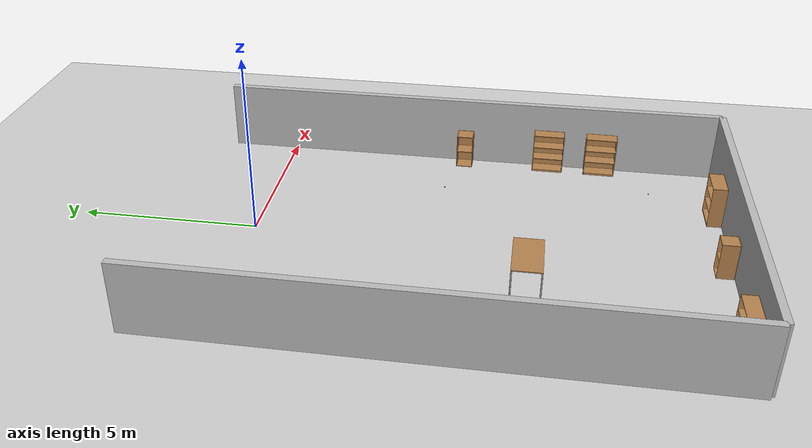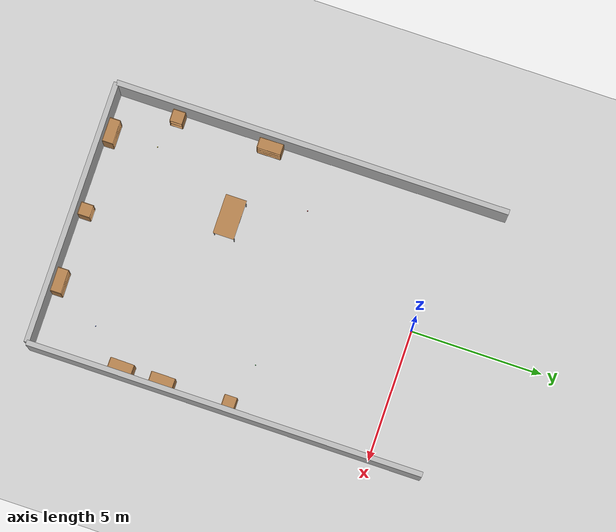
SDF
<sdf version="1.7">
 <world name="default">
  <model name="ground_plane">
   <static>1</static>
   <link name="link">
    <collision name="collision">
     <geometry><plane><normal>0 0 1</normal><size>100 100</size></plane></geometry>
     <surface><friction><ode><mu>100</mu><mu2>50</mu2></ode></friction></surface>
    </collision>
    <visual name="visual">
     <cast_shadows>0</cast_shadows>
     <geometry><plane><normal>0 0 1</normal><size>100 100</size></plane></geometry>
     <material>
      <script><uri>file://media/materials/scripts/gazebo.material</uri><name>Gazebo/Grey</name></script>
     </material>
    </visual>
    <velocity_decay><linear>0</linear><angular>0</angular></velocity_decay>
   </link>
  </model>
  <model name="wall_1_model">
   <pose>0 -13 1 0 -0 0</pose>
   <static>1</static>
   <link name="wall_1_body">
    <inertial>
     <mass>1</mass>
     <inertia><ixx>1</ixx><ixy>0</ixy><ixz>0</ixz><iyy>1</iyy><iyz>0</iyz><izz>1</izz></inertia>
    </inertial>
    <collision name="collision"><geometry><box><size>10 0.2 2</size></box></geometry></collision>
    <visual name="visual"><geometry><box><size>10 0.2 2</size></box></geometry></visual>
    <velocity_decay><linear>0</linear><angular>0</angular></velocity_decay>
   </link>
  </model>
  <model name="wall_3_model">
   <pose>-5 -5.5 1 0 -0 0</pose>
   <static>1</static>
   <link name="wall_3_body">
    <inertial>
     <mass>1</mass>
     <inertia><ixx>1</ixx><ixy>0</ixy><ixz>0</ixz><iyy>1</iyy><iyz>0</iyz><izz>1</izz></inertia>
    </inertial>
    <collision name="collision"><geometry><box><size>0.2 15 2</size></box></geometry></collision>
    <visual name="visual"><geometry><box><size>0.2 15 2</size></box></geometry></visual>
    <velocity_decay><linear>0</linear><angular>0</angular></velocity_decay>
   </link>
  </model>
  <model name="wall_4_model">
   <pose>5 -5.5 1 0 -0 0</pose>
   <static>1</static>
   <link name="wall_4_body">
    <inertial>
     <mass>1</mass>
     <inertia><ixx>1</ixx><ixy>0</ixy><ixz>0</ixz><iyy>1</iyy><iyz>0</iyz><izz>1</izz></inertia>
    </inertial>
    <collision name="collision"><geometry><box><size>0.2 15 2</size></box></geometry></collision>
    <visual name="visual"><geometry><box><size>0.2 15 2</size></box></geometry></visual>
    <velocity_decay><linear>0</linear><angular>0</angular></velocity_decay>
   </link>
  </model>
  <model name="cabinet_0">
   <static>0</static>
   <link name="cabinet_bottom_plate">
    <inertial>
     <pose>0 0 -1 0 -0 0</pose>
     <inertia><ixx>2.05</ixx><ixy>0</ixy><ixz>0</ixz><iyy>2.05</iyy><iyz>0</iyz><izz>2.05</izz></inertia>
     <mass>25</mass>
    </inertial>
    <collision name="cabinet_bottom_plate_geom">
     <pose>0 0 0.01 0 -0 0</pose>
     <geometry><box><size>0.45 0.45 0.02</size></box></geometry>
    </collision>
    <visual name="cabinet_bottom_plate_geom_visual">
     <pose>0 0 0.01 0 -0 0</pose>
     <geometry><box><size>0.45 0.45 0.02</size></box></geometry>
     <material>
      <script><uri>file://media/materials/scripts/gazebo.material</uri><name>Gazebo/Wood</name></script>
     </material>
    </visual>
    <collision name="cabinet_bottom_plate_geom_cabinet_back_plate">
     <pose>0.235 0 0.51 0 -0 0</pose>
     <geometry><box><size>0.02 0.45 1.02</size></box></geometry>
    </collision>
    <visual name="cabinet_bottom_plate_geom_cabinet_back_plate_visual">
     <pose>0.235 0 0.51 0 -0 0</pose>
     <geometry><box><size>0.02 0.45 1.02</size></box></geometry>
     <material>
      <script><uri>file://media/materials/scripts/gazebo.material</uri><name>Gazebo/Wood</name></script>
     </material>
    </visual>
    <collision name="cabinet_bottom_plate_geom_cabinet_left_plate">
     <pose>0 0.235 0.51 0 -0 0</pose>
     <geometry><box><size>0.45 0.02 1.02</size></box></geometry>
    </collision>
    <visual name="cabinet_bottom_plate_geom_cabinet_left_plate_visual">
     <pose>0 0.235 0.51 0 -0 0</pose>
     <geometry><box><size>0.45 0.02 1.02</size></box></geometry>
     <material>
      <script><uri>file://media/materials/scripts/gazebo.material</uri><name>Gazebo/Wood</name></script>
     </material>
    </visual>
    <collision name="cabinet_bottom_plate_geom_cabinet_middle_plate">
     <pose>0 0 0.51 0 -0 0</pose>
     <geometry><box><size>0.45 0.45 0.02</size></box></geometry>
    </collision>
    <visual name="cabinet_bottom_plate_geom_cabinet_middle_plate_visual">
     <pose>0 0 0.51 0 -0 0</pose>
     <geometry><box><size>0.45 0.45 0.02</size></box></geometry>
     <material>
      <script><uri>file://media/materials/scripts/gazebo.material</uri><name>Gazebo/Wood</name></script>
     </material>
    </visual>
    <collision name="cabinet_bottom_plate_geom_cabinet_right_plate">
     <pose>0 -0.235 0.51 0 -0 0</pose>
     <geometry><box><size>0.45 0.02 1.02</size></box></geometry>
    </collision>
    <visual name="cabinet_bottom_plate_geom_cabinet_right_plate_visual">
     <pose>0 -0.235 0.51 0 -0 0</pose>
     <geometry><box><size>0.45 0.02 1.02</size></box></geometry>
     <material>
      <script><uri>file://media/materials/scripts/gazebo.material</uri><name>Gazebo/Wood</name></script>
     </material>
    </visual>
    <collision name="cabinet_bottom_plate_geom_cabinet_top_plate">
     <pose>0 0 1.01 0 -0 0</pose>
     <geometry><box><size>0.45 0.45 0.02</size></box></geometry>
    </collision>
    <visual name="cabinet_bottom_plate_geom_cabinet_top_plate_visual">
     <pose>0 0 1.01 0 -0 0</pose>
     <geometry><box><size>0.45 0.45 0.02</size></box></geometry>
     <material>
      <script><uri>file://media/materials/scripts/gazebo.material</uri><name>Gazebo/Wood</name></script>
     </material>
    </visual>
    <velocity_decay><linear>0</linear><angular>0</angular></velocity_decay>
   </link>
   <pose>4.65193 -5.43983 -1e-06 -1e-06 1e-06 0.000854</pose>
  </model>
  <model name="bookshelf">
   <static>0</static>
   <link name="link">
    <inertial>
     <mass>1</mass>
     <inertia><ixx>1</ixx><ixy>0</ixy><ixz>0</ixz><iyy>1</iyy><iyz>0</iyz><izz>1</izz></inertia>
    </inertial>
    <collision name="back">
     <pose>0 0.005 0.6 0 -0 0</pose>
     <geometry><box><size>0.9 0.01 1.2</size></box></geometry>
    </collision>
    <visual name="visual1">
     <pose>0 0.005 0.6 0 -0 0</pose>
     <geometry><box><size>0.9 0.01 1.2</size></box></geometry>
     <material>
      <script><uri>file://media/materials/scripts/gazebo.material</uri><name>Gazebo/Wood</name></script>
     </material>
    </visual>
    <collision name="left_side">
     <pose>0.45 -0.195 0.6 0 -0 0</pose>
     <geometry><box><size>0.02 0.4 1.2</size></box></geometry>
    </collision>
    <visual name="visual2">
     <pose>0.45 -0.195 0.6 0 -0 0</pose>
     <geometry><box><size>0.02 0.4 1.2</size></box></geometry>
     <material>
      <script><uri>file://media/materials/scripts/gazebo.material</uri><name>Gazebo/Wood</name></script>
     </material>
    </visual>
    <collision name="right_side">
     <pose>-0.45 -0.195 0.6 0 -0 0</pose>
     <geometry><box><size>0.02 0.4 1.2</size></box></geometry>
    </collision>
    <visual name="visual3">
     <pose>-0.45 -0.195 0.6 0 -0 0</pose>
     <geometry><box><size>0.02 0.4 1.2</size></box></geometry>
     <material>
      <script><uri>file://media/materials/scripts/gazebo.material</uri><name>Gazebo/Wood</name></script>
     </material>
    </visual>
    <collision name="bottom">
     <pose>0 -0.195 0.03 0 -0 0</pose>
     <geometry><box><size>0.88 0.4 0.06</size></box></geometry>
    </collision>
    <visual name="visual4">
     <pose>0 -0.195 0.03 0 -0 0</pose>
     <geometry><box><size>0.88 0.4 0.06</size></box></geometry>
     <material>
      <script><uri>file://media/materials/scripts/gazebo.material</uri><name>Gazebo/Wood</name></script>
     </material>
    </visual>
    <collision name="top">
     <pose>0 -0.195 1.19 0 -0 0</pose>
     <geometry><box><size>0.88 0.4 0.02</size></box></geometry>
    </collision>
    <visual name="visual5">
     <pose>0 -0.195 1.19 0 -0 0</pose>
     <geometry><box><size>0.88 0.4 0.02</size></box></geometry>
     <material>
      <script><uri>file://media/materials/scripts/gazebo.material</uri><name>Gazebo/Wood</name></script>
     </material>
    </visual>
    <collision name="low_shelf">
     <pose>0 -0.195 0.43 0 -0 0</pose>
     <geometry><box><size>0.88 0.4 0.02</size></box></geometry>
    </collision>
    <visual name="visual6">
     <pose>0 -0.195 0.43 0 -0 0</pose>
     <geometry><box><size>0.88 0.4 0.02</size></box></geometry>
     <material>
      <script><uri>file://media/materials/scripts/gazebo.material</uri><name>Gazebo/Wood</name></script>
     </material>
    </visual>
    <collision name="high_shelf">
     <pose>0 -0.195 0.8 0 -0 0</pose>
     <geometry><box><size>0.88 0.4 0.02</size></box></geometry>
    </collision>
    <visual name="visual7">
     <pose>0 -0.195 0.8 0 -0 0</pose>
     <geometry><box><size>0.88 0.4 0.02</size></box></geometry>
     <material>
      <script><uri>file://media/materials/scripts/gazebo.material</uri><name>Gazebo/Wood</name></script>
     </material>
    </visual>
    <velocity_decay><linear>0</linear><angular>0</angular></velocity_decay>
   </link>
   <pose>4.88139 -9.56645 1e-06 -0 1e-06 -1.5884</pose>
  </model>
  <model name="bookshelf_2">
   <static>0</static>
   <link name="link">
    <inertial>
     <mass>1</mass>
     <inertia><ixx>1</ixx><ixy>0</ixy><ixz>0</ixz><iyy>1</iyy><iyz>0</iyz><izz>1</izz></inertia>
    </inertial>
    <collision name="back">
     <pose>0 0.005 0.6 0 -0 0</pose>
     <geometry><box><size>0.9 0.01 1.2</size></box></geometry>
    </collision>
    <visual name="visual1">
     <pose>0 0.005 0.6 0 -0 0</pose>
     <geometry><box><size>0.9 0.01 1.2</size></box></geometry>
     <material>
      <script><uri>file://media/materials/scripts/gazebo.material</uri><name>Gazebo/Wood</name></script>
     </material>
    </visual>
    <collision name="left_side">
     <pose>0.45 -0.195 0.6 0 -0 0</pose>
     <geometry><box><size>0.02 0.4 1.2</size></box></geometry>
    </collision>
    <visual name="visual2">
     <pose>0.45 -0.195 0.6 0 -0 0</pose>
     <geometry><box><size>0.02 0.4 1.2</size></box></geometry>
     <material>
      <script><uri>file://media/materials/scripts/gazebo.material</uri><name>Gazebo/Wood</name></script>
     </material>
    </visual>
    <collision name="right_side">
     <pose>-0.45 -0.195 0.6 0 -0 0</pose>
     <geometry><box><size>0.02 0.4 1.2</size></box></geometry>
    </collision>
    <visual name="visual3">
     <pose>-0.45 -0.195 0.6 0 -0 0</pose>
     <geometry><box><size>0.02 0.4 1.2</size></box></geometry>
     <material>
      <script><uri>file://media/materials/scripts/gazebo.material</uri><name>Gazebo/Wood</name></script>
     </material>
    </visual>
    <collision name="bottom">
     <pose>0 -0.195 0.03 0 -0 0</pose>
     <geometry><box><size>0.88 0.4 0.06</size></box></geometry>
    </collision>
    <visual name="visual4">
     <pose>0 -0.195 0.03 0 -0 0</pose>
     <geometry><box><size>0.88 0.4 0.06</size></box></geometry>
     <material>
      <script><uri>file://media/materials/scripts/gazebo.material</uri><name>Gazebo/Wood</name></script>
     </material>
    </visual>
    <collision name="top">
     <pose>0 -0.195 1.19 0 -0 0</pose>
     <geometry><box><size>0.88 0.4 0.02</size></box></geometry>
    </collision>
    <visual name="visual5">
     <pose>0 -0.195 1.19 0 -0 0</pose>
     <geometry><box><size>0.88 0.4 0.02</size></box></geometry>
     <material>
      <script><uri>file://media/materials/scripts/gazebo.material</uri><name>Gazebo/Wood</name></script>
     </material>
    </visual>
    <collision name="low_shelf">
     <pose>0 -0.195 0.43 0 -0 0</pose>
     <geometry><box><size>0.88 0.4 0.02</size></box></geometry>
    </collision>
    <visual name="visual6">
     <pose>0 -0.195 0.43 0 -0 0</pose>
     <geometry><box><size>0.88 0.4 0.02</size></box></geometry>
     <material>
      <script><uri>file://media/materials/scripts/gazebo.material</uri><name>Gazebo/Wood</name></script>
     </material>
    </visual>
    <collision name="high_shelf">
     <pose>0 -0.195 0.8 0 -0 0</pose>
     <geometry><box><size>0.88 0.4 0.02</size></box></geometry>
    </collision>
    <visual name="visual7">
     <pose>0 -0.195 0.8 0 -0 0</pose>
     <geometry><box><size>0.88 0.4 0.02</size></box></geometry>
     <material>
      <script><uri>file://media/materials/scripts/gazebo.material</uri><name>Gazebo/Wood</name></script>
     </material>
    </visual>
    <velocity_decay><linear>0</linear><angular>0</angular></velocity_decay>
   </link>
   <pose>-4.86972 -7.01077 1e-06 0 1e-06 1.57822</pose>
  </model>
  <model name="table_1">
   <static>0</static>
   <link name="link">
    <collision name="surface">
     <pose>0 0 1 0 -0 0</pose>
     <geometry><box><size>1.5 0.8 0.03</size></box></geometry>
    </collision>
    <visual name="visual1">
     <pose>0 0 1 0 -0 0</pose>
     <geometry><box><size>1.5 0.8 0.03</size></box></geometry>
     <material>
      <script><uri>file://media/materials/scripts/gazebo.material</uri><name>Gazebo/Wood</name></script>
     </material>
    </visual>
    <collision name="front_left_leg_collision">
     <pose>0.68 0.38 0.5 0 -0 0</pose>
     <geometry><cylinder><radius>0.02</radius><length>1</length></cylinder></geometry>
    </collision>
    <visual name="front_left_leg">
     <pose>0.68 0.38 0.5 0 -0 0</pose>
     <geometry><cylinder><radius>0.02</radius><length>1</length></cylinder></geometry>
     <material>
      <script><uri>file://media/materials/scripts/gazebo.material</uri><name>Gazebo/Grey</name></script>
     </material>
    </visual>
    <collision name="front_right_leg_collision">
     <pose>0.68 -0.38 0.5 0 -0 0</pose>
     <geometry><cylinder><radius>0.02</radius><length>1</length></cylinder></geometry>
    </collision>
    <visual name="front_right_leg">
     <pose>0.68 -0.38 0.5 0 -0 0</pose>
     <geometry><cylinder><radius>0.02</radius><length>1</length></cylinder></geometry>
     <material>
      <script><uri>file://media/materials/scripts/gazebo.material</uri><name>Gazebo/Grey</name></script>
     </material>
    </visual>
    <collision name="back_right_leg_collision">
     <pose>-0.68 -0.38 0.5 0 -0 0</pose>
     <geometry><cylinder><radius>0.02</radius><length>1</length></cylinder></geometry>
    </collision>
    <visual name="back_right_leg">
     <pose>-0.68 -0.38 0.5 0 -0 0</pose>
     <geometry><cylinder><radius>0.02</radius><length>1</length></cylinder></geometry>
     <material>
      <script><uri>file://media/materials/scripts/gazebo.material</uri><name>Gazebo/Grey</name></script>
     </material>
    </visual>
    <collision name="back_left_leg_collision">
     <pose>-0.68 0.38 0.5 0 -0 0</pose>
     <geometry><cylinder><radius>0.02</radius><length>1</length></cylinder></geometry>
    </collision>
    <visual name="back_left_leg">
     <pose>-0.68 0.38 0.5 0 -0 0</pose>
     <geometry><cylinder><radius>0.02</radius><length>1</length></cylinder></geometry>
     <material>
      <script><uri>file://media/materials/scripts/gazebo.material</uri><name>Gazebo/Grey</name></script>
     </material>
    </visual>
    <velocity_decay><linear>0</linear><angular>0</angular></velocity_decay>
    <inertial>
     <inertia><ixx>1</ixx><ixy>0</ixy><ixz>0</ixz><iyy>1</iyy><iyz>0</iyz><izz>1</izz></inertia>
     <mass>1</mass>
    </inertial>
   </link>
   <pose>-1.76173 -7.584 -1e-06 0 2e-06 0</pose>
  </model>
  <model name="bookshelf_3">
   <static>0</static>
   <link name="link">
    <inertial>
     <mass>1</mass>
     <inertia><ixx>1</ixx><ixy>0</ixy><ixz>0</ixz><iyy>1</iyy><iyz>0</iyz><izz>1</izz></inertia>
    </inertial>
    <collision name="back">
     <pose>0 0.005 0.6 0 -0 0</pose>
     <geometry><box><size>0.9 0.01 1.2</size></box></geometry>
    </collision>
    <visual name="visual1">
     <pose>0 0.005 0.6 0 -0 0</pose>
     <geometry><box><size>0.9 0.01 1.2</size></box></geometry>
     <material>
      <script><uri>file://media/materials/scripts/gazebo.material</uri><name>Gazebo/Wood</name></script>
     </material>
    </visual>
    <collision name="left_side">
     <pose>0.45 -0.195 0.6 0 -0 0</pose>
     <geometry><box><size>0.02 0.4 1.2</size></box></geometry>
    </collision>
    <visual name="visual2">
     <pose>0.45 -0.195 0.6 0 -0 0</pose>
     <geometry><box><size>0.02 0.4 1.2</size></box></geometry>
     <material>
      <script><uri>file://media/materials/scripts/gazebo.material</uri><name>Gazebo/Wood</name></script>
     </material>
    </visual>
    <collision name="right_side">
     <pose>-0.45 -0.195 0.6 0 -0 0</pose>
     <geometry><box><size>0.02 0.4 1.2</size></box></geometry>
    </collision>
    <visual name="visual3">
     <pose>-0.45 -0.195 0.6 0 -0 0</pose>
     <geometry><box><size>0.02 0.4 1.2</size></box></geometry>
     <material>
      <script><uri>file://media/materials/scripts/gazebo.material</uri><name>Gazebo/Wood</name></script>
     </material>
    </visual>
    <collision name="bottom">
     <pose>0 -0.195 0.03 0 -0 0</pose>
     <geometry><box><size>0.88 0.4 0.06</size></box></geometry>
    </collision>
    <visual name="visual4">
     <pose>0 -0.195 0.03 0 -0 0</pose>
     <geometry><box><size>0.88 0.4 0.06</size></box></geometry>
     <material>
      <script><uri>file://media/materials/scripts/gazebo.material</uri><name>Gazebo/Wood</name></script>
     </material>
    </visual>
    <collision name="top">
     <pose>0 -0.195 1.19 0 -0 0</pose>
     <geometry><box><size>0.88 0.4 0.02</size></box></geometry>
    </collision>
    <visual name="visual5">
     <pose>0 -0.195 1.19 0 -0 0</pose>
     <geometry><box><size>0.88 0.4 0.02</size></box></geometry>
     <material>
      <script><uri>file://media/materials/scripts/gazebo.material</uri><name>Gazebo/Wood</name></script>
     </material>
    </visual>
    <collision name="low_shelf">
     <pose>0 -0.195 0.43 0 -0 0</pose>
     <geometry><box><size>0.88 0.4 0.02</size></box></geometry>
    </collision>
    <visual name="visual6">
     <pose>0 -0.195 0.43 0 -0 0</pose>
     <geometry><box><size>0.88 0.4 0.02</size></box></geometry>
     <material>
      <script><uri>file://media/materials/scripts/gazebo.material</uri><name>Gazebo/Wood</name></script>
     </material>
    </visual>
    <collision name="high_shelf">
     <pose>0 -0.195 0.8 0 -0 0</pose>
     <geometry><box><size>0.88 0.4 0.02</size></box></geometry>
    </collision>
    <visual name="visual7">
     <pose>0 -0.195 0.8 0 -0 0</pose>
     <geometry><box><size>0.88 0.4 0.02</size></box></geometry>
     <material>
      <script><uri>file://media/materials/scripts/gazebo.material</uri><name>Gazebo/Wood</name></script>
     </material>
    </visual>
    <velocity_decay><linear>0</linear><angular>0</angular></velocity_decay>
   </link>
   <pose>2.43147 -12.8834 -1e-06 -0 -3e-06 -3.13362</pose>
  </model>
  <model name="bookshelf_4">
   <static>0</static>
   <link name="link">
    <inertial>
     <mass>1</mass>
     <inertia><ixx>1</ixx><ixy>0</ixy><ixz>0</ixz><iyy>1</iyy><iyz>0</iyz><izz>1</izz></inertia>
    </inertial>
    <collision name="back">
     <pose>0 0.005 0.6 0 -0 0</pose>
     <geometry><box><size>0.9 0.01 1.2</size></box></geometry>
    </collision>
    <visual name="visual1">
     <pose>0 0.005 0.6 0 -0 0</pose>
     <geometry><box><size>0.9 0.01 1.2</size></box></geometry>
     <material>
      <script><uri>file://media/materials/scripts/gazebo.material</uri><name>Gazebo/Wood</name></script>
     </material>
    </visual>
    <collision name="left_side">
     <pose>0.45 -0.195 0.6 0 -0 0</pose>
     <geometry><box><size>0.02 0.4 1.2</size></box></geometry>
    </collision>
    <visual name="visual2">
     <pose>0.45 -0.195 0.6 0 -0 0</pose>
     <geometry><box><size>0.02 0.4 1.2</size></box></geometry>
     <material>
      <script><uri>file://media/materials/scripts/gazebo.material</uri><name>Gazebo/Wood</name></script>
     </material>
    </visual>
    <collision name="right_side">
     <pose>-0.45 -0.195 0.6 0 -0 0</pose>
     <geometry><box><size>0.02 0.4 1.2</size></box></geometry>
    </collision>
    <visual name="visual3">
     <pose>-0.45 -0.195 0.6 0 -0 0</pose>
     <geometry><box><size>0.02 0.4 1.2</size></box></geometry>
     <material>
      <script><uri>file://media/materials/scripts/gazebo.material</uri><name>Gazebo/Wood</name></script>
     </material>
    </visual>
    <collision name="bottom">
     <pose>0 -0.195 0.03 0 -0 0</pose>
     <geometry><box><size>0.88 0.4 0.06</size></box></geometry>
    </collision>
    <visual name="visual4">
     <pose>0 -0.195 0.03 0 -0 0</pose>
     <geometry><box><size>0.88 0.4 0.06</size></box></geometry>
     <material>
      <script><uri>file://media/materials/scripts/gazebo.material</uri><name>Gazebo/Wood</name></script>
     </material>
    </visual>
    <collision name="top">
     <pose>0 -0.195 1.19 0 -0 0</pose>
     <geometry><box><size>0.88 0.4 0.02</size></box></geometry>
    </collision>
    <visual name="visual5">
     <pose>0 -0.195 1.19 0 -0 0</pose>
     <geometry><box><size>0.88 0.4 0.02</size></box></geometry>
     <material>
      <script><uri>file://media/materials/scripts/gazebo.material</uri><name>Gazebo/Wood</name></script>
     </material>
    </visual>
    <collision name="low_shelf">
     <pose>0 -0.195 0.43 0 -0 0</pose>
     <geometry><box><size>0.88 0.4 0.02</size></box></geometry>
    </collision>
    <visual name="visual6">
     <pose>0 -0.195 0.43 0 -0 0</pose>
     <geometry><box><size>0.88 0.4 0.02</size></box></geometry>
     <material>
      <script><uri>file://media/materials/scripts/gazebo.material</uri><name>Gazebo/Wood</name></script>
     </material>
    </visual>
    <collision name="high_shelf">
     <pose>0 -0.195 0.8 0 -0 0</pose>
     <geometry><box><size>0.88 0.4 0.02</size></box></geometry>
    </collision>
    <visual name="visual7">
     <pose>0 -0.195 0.8 0 -0 0</pose>
     <geometry><box><size>0.88 0.4 0.02</size></box></geometry>
     <material>
      <script><uri>file://media/materials/scripts/gazebo.material</uri><name>Gazebo/Wood</name></script>
     </material>
    </visual>
    <velocity_decay><linear>0</linear><angular>0</angular></velocity_decay>
   </link>
   <pose>4.88559 -7.99576 -1e-06 0 3e-06 -1.57572</pose>
  </model>
  <model name="bookshelf_5">
   <static>0</static>
   <link name="link">
    <inertial>
     <mass>1</mass>
     <inertia><ixx>1</ixx><ixy>0</ixy><ixz>0</ixz><iyy>1</iyy><iyz>0</iyz><izz>1</izz></inertia>
    </inertial>
    <collision name="back">
     <pose>0 0.005 0.6 0 -0 0</pose>
     <geometry><box><size>0.9 0.01 1.2</size></box></geometry>
    </collision>
    <visual name="visual1">
     <pose>0 0.005 0.6 0 -0 0</pose>
     <geometry><box><size>0.9 0.01 1.2</size></box></geometry>
     <material>
      <script><uri>file://media/materials/scripts/gazebo.material</uri><name>Gazebo/Wood</name></script>
     </material>
    </visual>
    <collision name="left_side">
     <pose>0.45 -0.195 0.6 0 -0 0</pose>
     <geometry><box><size>0.02 0.4 1.2</size></box></geometry>
    </collision>
    <visual name="visual2">
     <pose>0.45 -0.195 0.6 0 -0 0</pose>
     <geometry><box><size>0.02 0.4 1.2</size></box></geometry>
     <material>
      <script><uri>file://media/materials/scripts/gazebo.material</uri><name>Gazebo/Wood</name></script>
     </material>
    </visual>
    <collision name="right_side">
     <pose>-0.45 -0.195 0.6 0 -0 0</pose>
     <geometry><box><size>0.02 0.4 1.2</size></box></geometry>
    </collision>
    <visual name="visual3">
     <pose>-0.45 -0.195 0.6 0 -0 0</pose>
     <geometry><box><size>0.02 0.4 1.2</size></box></geometry>
     <material>
      <script><uri>file://media/materials/scripts/gazebo.material</uri><name>Gazebo/Wood</name></script>
     </material>
    </visual>
    <collision name="bottom">
     <pose>0 -0.195 0.03 0 -0 0</pose>
     <geometry><box><size>0.88 0.4 0.06</size></box></geometry>
    </collision>
    <visual name="visual4">
     <pose>0 -0.195 0.03 0 -0 0</pose>
     <geometry><box><size>0.88 0.4 0.06</size></box></geometry>
     <material>
      <script><uri>file://media/materials/scripts/gazebo.material</uri><name>Gazebo/Wood</name></script>
     </material>
    </visual>
    <collision name="top">
     <pose>0 -0.195 1.19 0 -0 0</pose>
     <geometry><box><size>0.88 0.4 0.02</size></box></geometry>
    </collision>
    <visual name="visual5">
     <pose>0 -0.195 1.19 0 -0 0</pose>
     <geometry><box><size>0.88 0.4 0.02</size></box></geometry>
     <material>
      <script><uri>file://media/materials/scripts/gazebo.material</uri><name>Gazebo/Wood</name></script>
     </material>
    </visual>
    <collision name="low_shelf">
     <pose>0 -0.195 0.43 0 -0 0</pose>
     <geometry><box><size>0.88 0.4 0.02</size></box></geometry>
    </collision>
    <visual name="visual6">
     <pose>0 -0.195 0.43 0 -0 0</pose>
     <geometry><box><size>0.88 0.4 0.02</size></box></geometry>
     <material>
      <script><uri>file://media/materials/scripts/gazebo.material</uri><name>Gazebo/Wood</name></script>
     </material>
    </visual>
    <collision name="high_shelf">
     <pose>0 -0.195 0.8 0 -0 0</pose>
     <geometry><box><size>0.88 0.4 0.02</size></box></geometry>
    </collision>
    <visual name="visual7">
     <pose>0 -0.195 0.8 0 -0 0</pose>
     <geometry><box><size>0.88 0.4 0.02</size></box></geometry>
     <material>
      <script><uri>file://media/materials/scripts/gazebo.material</uri><name>Gazebo/Wood</name></script>
     </material>
    </visual>
    <velocity_decay><linear>0</linear><angular>0</angular></velocity_decay>
   </link>
   <pose>-3.37078 -12.8838 1e-06 -6.3e-05 -0 -3.13747</pose>
  </model>
  <model name="cabinet_1_clone">
   <static>0</static>
   <link name="cabinet_bottom_plate">
    <inertial>
     <pose>0 0 -1 0 -0 0</pose>
     <inertia><ixx>2.05</ixx><ixy>0</ixy><ixz>0</ixz><iyy>2.05</iyy><iyz>0</iyz><izz>2.05</izz></inertia>
     <mass>25</mass>
    </inertial>
    <collision name="cabinet_bottom_plate_geom">
     <pose>0 0 0.01 0 -0 0</pose>
     <geometry><box><size>0.45 0.45 0.02</size></box></geometry>
    </collision>
    <visual name="cabinet_bottom_plate_geom_visual">
     <pose>0 0 0.01 0 -0 0</pose>
     <geometry><box><size>0.45 0.45 0.02</size></box></geometry>
     <material>
      <script><uri>file://media/materials/scripts/gazebo.material</uri><name>Gazebo/Wood</name></script>
     </material>
    </visual>
    <collision name="cabinet_bottom_plate_geom_cabinet_back_plate">
     <pose>0.235 0 0.51 0 -0 0</pose>
     <geometry><box><size>0.02 0.45 1.02</size></box></geometry>
    </collision>
    <visual name="cabinet_bottom_plate_geom_cabinet_back_plate_visual">
     <pose>0.235 0 0.51 0 -0 0</pose>
     <geometry><box><size>0.02 0.45 1.02</size></box></geometry>
     <material>
      <script><uri>file://media/materials/scripts/gazebo.material</uri><name>Gazebo/Wood</name></script>
     </material>
    </visual>
    <collision name="cabinet_bottom_plate_geom_cabinet_left_plate">
     <pose>0 0.235 0.51 0 -0 0</pose>
     <geometry><box><size>0.45 0.02 1.02</size></box></geometry>
    </collision>
    <visual name="cabinet_bottom_plate_geom_cabinet_left_plate_visual">
     <pose>0 0.235 0.51 0 -0 0</pose>
     <geometry><box><size>0.45 0.02 1.02</size></box></geometry>
     <material>
      <script><uri>file://media/materials/scripts/gazebo.material</uri><name>Gazebo/Wood</name></script>
     </material>
    </visual>
    <collision name="cabinet_bottom_plate_geom_cabinet_middle_plate">
     <pose>0 0 0.51 0 -0 0</pose>
     <geometry><box><size>0.45 0.45 0.02</size></box></geometry>
    </collision>
    <visual name="cabinet_bottom_plate_geom_cabinet_middle_plate_visual">
     <pose>0 0 0.51 0 -0 0</pose>
     <geometry><box><size>0.45 0.45 0.02</size></box></geometry>
     <material>
      <script><uri>file://media/materials/scripts/gazebo.material</uri><name>Gazebo/Wood</name></script>
     </material>
    </visual>
    <collision name="cabinet_bottom_plate_geom_cabinet_right_plate">
     <pose>0 -0.235 0.51 0 -0 0</pose>
     <geometry><box><size>0.45 0.02 1.02</size></box></geometry>
    </collision>
    <visual name="cabinet_bottom_plate_geom_cabinet_right_plate_visual">
     <pose>0 -0.235 0.51 0 -0 0</pose>
     <geometry><box><size>0.45 0.02 1.02</size></box></geometry>
     <material>
      <script><uri>file://media/materials/scripts/gazebo.material</uri><name>Gazebo/Wood</name></script>
     </material>
    </visual>
    <collision name="cabinet_bottom_plate_geom_cabinet_top_plate">
     <pose>0 0 1.01 0 -0 0</pose>
     <geometry><box><size>0.45 0.45 0.02</size></box></geometry>
    </collision>
    <visual name="cabinet_bottom_plate_geom_cabinet_top_plate_visual">
     <pose>0 0 1.01 0 -0 0</pose>
     <geometry><box><size>0.45 0.45 0.02</size></box></geometry>
     <material>
      <script><uri>file://media/materials/scripts/gazebo.material</uri><name>Gazebo/Wood</name></script>
     </material>
    </visual>
    <velocity_decay><linear>0</linear><angular>0</angular></velocity_decay>
   </link>
   <pose>-4.65278 -10.5758 -1e-06 -0 -3e-06 -3.13171</pose>
  </model>
  <model name="cabinet_0_clone">
   <static>0</static>
   <link name="cabinet_bottom_plate">
    <inertial>
     <pose>0 0 -1 0 -0 0</pose>
     <inertia><ixx>2.05</ixx><ixy>0</ixy><ixz>0</ixz><iyy>2.05</iyy><iyz>0</iyz><izz>2.05</izz></inertia>
     <mass>25</mass>
    </inertial>
    <collision name="cabinet_bottom_plate_geom">
     <pose>0 0 0.01 0 -0 0</pose>
     <geometry><box><size>0.45 0.45 0.02</size></box></geometry>
    </collision>
    <visual name="cabinet_bottom_plate_geom_visual">
     <pose>0 0 0.01 0 -0 0</pose>
     <geometry><box><size>0.45 0.45 0.02</size></box></geometry>
     <material>
      <script><uri>file://media/materials/scripts/gazebo.material</uri><name>Gazebo/Wood</name></script>
     </material>
    </visual>
    <collision name="cabinet_bottom_plate_geom_cabinet_back_plate">
     <pose>0.235 0 0.51 0 -0 0</pose>
     <geometry><box><size>0.02 0.45 1.02</size></box></geometry>
    </collision>
    <visual name="cabinet_bottom_plate_geom_cabinet_back_plate_visual">
     <pose>0.235 0 0.51 0 -0 0</pose>
     <geometry><box><size>0.02 0.45 1.02</size></box></geometry>
     <material>
      <script><uri>file://media/materials/scripts/gazebo.material</uri><name>Gazebo/Wood</name></script>
     </material>
    </visual>
    <collision name="cabinet_bottom_plate_geom_cabinet_left_plate">
     <pose>0 0.235 0.51 0 -0 0</pose>
     <geometry><box><size>0.45 0.02 1.02</size></box></geometry>
    </collision>
    <visual name="cabinet_bottom_plate_geom_cabinet_left_plate_visual">
     <pose>0 0.235 0.51 0 -0 0</pose>
     <geometry><box><size>0.45 0.02 1.02</size></box></geometry>
     <material>
      <script><uri>file://media/materials/scripts/gazebo.material</uri><name>Gazebo/Wood</name></script>
     </material>
    </visual>
    <collision name="cabinet_bottom_plate_geom_cabinet_middle_plate">
     <pose>0 0 0.51 0 -0 0</pose>
     <geometry><box><size>0.45 0.45 0.02</size></box></geometry>
    </collision>
    <visual name="cabinet_bottom_plate_geom_cabinet_middle_plate_visual">
     <pose>0 0 0.51 0 -0 0</pose>
     <geometry><box><size>0.45 0.45 0.02</size></box></geometry>
     <material>
      <script><uri>file://media/materials/scripts/gazebo.material</uri><name>Gazebo/Wood</name></script>
     </material>
    </visual>
    <collision name="cabinet_bottom_plate_geom_cabinet_right_plate">
     <pose>0 -0.235 0.51 0 -0 0</pose>
     <geometry><box><size>0.45 0.02 1.02</size></box></geometry>
    </collision>
    <visual name="cabinet_bottom_plate_geom_cabinet_right_plate_visual">
     <pose>0 -0.235 0.51 0 -0 0</pose>
     <geometry><box><size>0.45 0.02 1.02</size></box></geometry>
     <material>
      <script><uri>file://media/materials/scripts/gazebo.material</uri><name>Gazebo/Wood</name></script>
     </material>
    </visual>
    <collision name="cabinet_bottom_plate_geom_cabinet_top_plate">
     <pose>0 0 1.01 0 -0 0</pose>
     <geometry><box><size>0.45 0.45 0.02</size></box></geometry>
    </collision>
    <visual name="cabinet_bottom_plate_geom_cabinet_top_plate_visual">
     <pose>0 0 1.01 0 -0 0</pose>
     <geometry><box><size>0.45 0.45 0.02</size></box></geometry>
     <material>
      <script><uri>file://media/materials/scripts/gazebo.material</uri><name>Gazebo/Wood</name></script>
     </material>
    </visual>
    <velocity_decay><linear>0</linear><angular>0</angular></velocity_decay>
   </link>
   <pose>-0.337827 -12.6476 -1e-06 1e-06 -1e-06 -1.57179</pose>
  </model>
  <model name="unit_sphere">
   <pose>3.0 -5.0 0.033303 -5e-06 1.3e-05 0.000147</pose>
   <link name="link">
    <inertial>
     <mass>0.01</mass>
     <inertia><ixx>0.1</ixx><ixy>0</ixy><ixz>0</ixz><iyy>0.1</iyy><iyz>0</iyz><izz>0.1</izz></inertia>
    </inertial>
    <collision name="collision"><geometry><sphere><radius>0.0180245</radius></sphere></geometry></collision>
    <visual name="visual">
     <geometry><sphere><radius>0.0180245</radius></sphere></geometry>
     <material>
      <script><name>Gazebo/Green</name><uri>file://media/materials/scripts/gazebo.material</uri></script>
     </material>
    </visual>
   </link>
  </model>
  <model name="unit_sphere_0">
   <pose>-3.0 -5.0 0.033303 -5e-06 1.3e-05 0.000147</pose>
   <link name="link">
    <inertial>
     <mass>0.01</mass>
     <inertia><ixx>0.1</ixx><ixy>0</ixy><ixz>0</ixz><iyy>0.1</iyy><iyz>0</iyz><izz>0.1</izz></inertia>
    </inertial>
    <collision name="collision"><geometry><sphere><radius>0.0180245</radius></sphere></geometry></collision>
    <visual name="visual">
     <geometry><sphere><radius>0.0180245</radius></sphere></geometry>
     <material>
      <script><name>Gazebo/Red</name><uri>file://media/materials/scripts/gazebo.material</uri></script>
     </material>
    </visual>
   </link>
  </model>
  <model name="unit_sphere_1">
   <pose>3.5 -11.0 0.033303 -5e-06 1.3e-05 0.000147</pose>
   <link name="link">
    <inertial>
     <mass>0.01</mass>
     <inertia><ixx>0.1</ixx><ixy>0</ixy><ixz>0</ixz><iyy>0.1</iyy><iyz>0</iyz><izz>0.1</izz></inertia>
    </inertial>
    <collision name="collision"><geometry><sphere><radius>0.0180245</radius></sphere></geometry></collision>
    <visual name="visual">
     <geometry><sphere><radius>0.0180245</radius></sphere></geometry>
     <material>
      <script><name>Gazebo/Blue</name><uri>file://media/materials/scripts/gazebo.material</uri></script>
     </material>
    </visual>
   </link>
  </model>
  <model name="unit_sphere_2">
   <pose>-3.5 -11.0 0.033303 -5e-06 1.3e-05 0.000147</pose>
   <link name="link">
    <inertial>
     <mass>0.01</mass>
     <inertia><ixx>0.1</ixx><ixy>0</ixy><ixz>0</ixz><iyy>0.1</iyy><iyz>0</iyz><izz>0.1</izz></inertia>
    </inertial>
    <collision name="collision"><geometry><sphere><radius>0.0180245</radius></sphere></geometry></collision>
    <visual name="visual">
     <geometry><sphere><radius>0.0180245</radius></sphere></geometry>
     <material>
      <script><name>Gazebo/Yellow</name><uri>file://media/materials/scripts/gazebo.material</uri></script>
     </material>
    </visual>
   </link>
  </model>
 </world>
</sdf>
